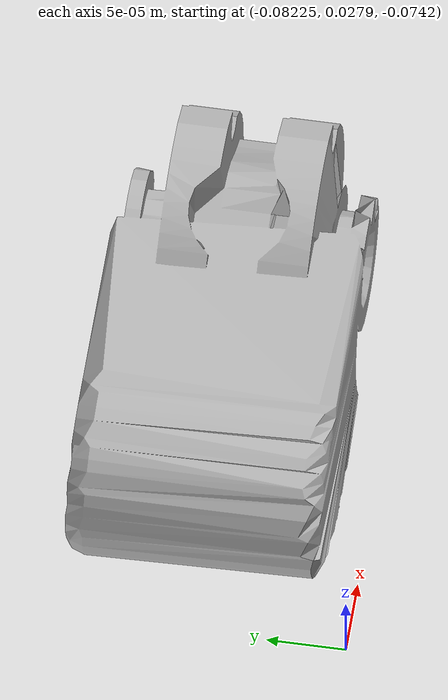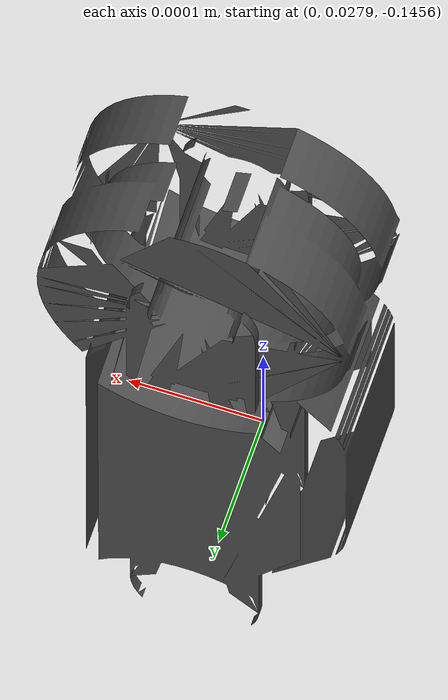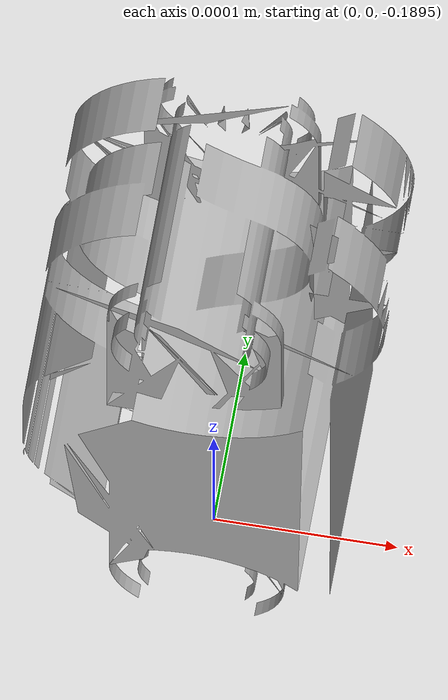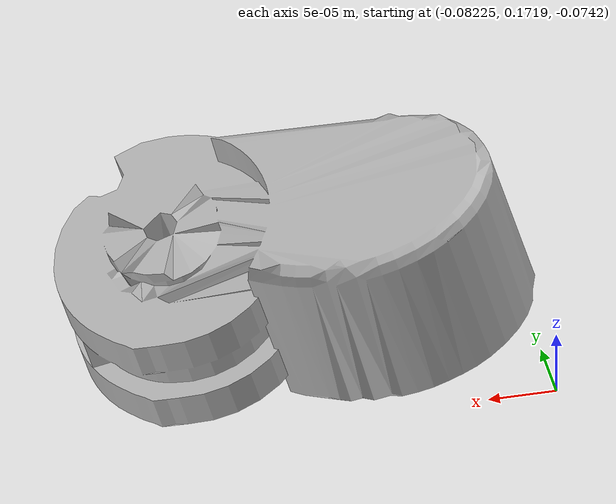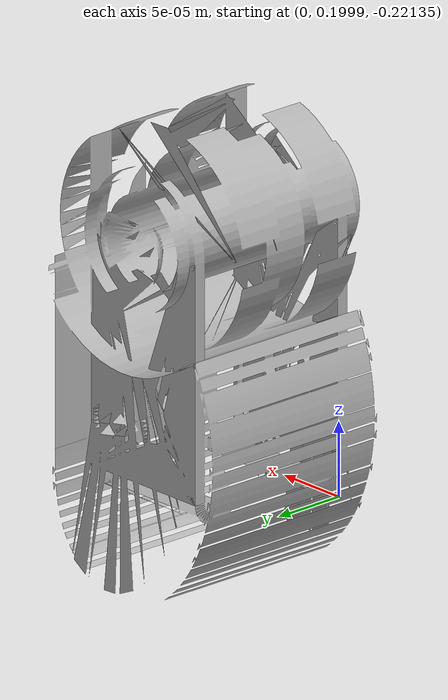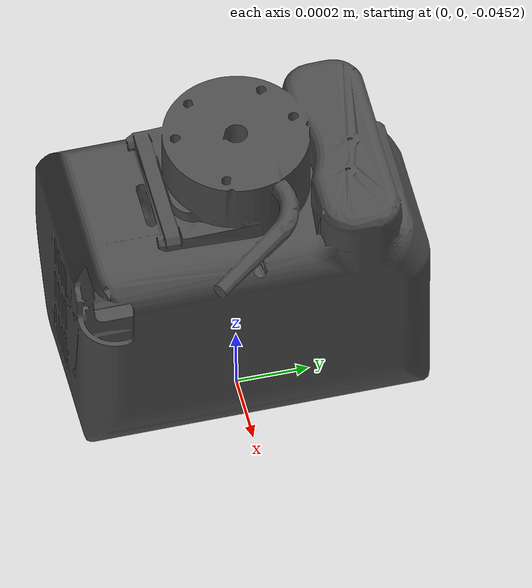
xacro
<?xml version="1.0"?>
<robot xmlns:sensor="http://playerstage.sourceforge.net/gazebo/xmlschema/#sensor"
       xmlns:controller="http://playerstage.sourceforge.net/gazebo/xmlschema/#controller"
       xmlns:interface="http://playerstage.sourceforge.net/gazebo/xmlschema/#interface"
       xmlns:xacro="http://playerstage.sourceforge.net/gazebo/xmlschema/#interface"
       name="m3" >

 <property name="M_PI" value="3.1415926535897931" />
 <property name="R_HAND" value="mh12" />
 <property name="L_HAND" value="mh14" />
 <property name="MESH" value="m3_description/meshes/mid_res" />
 <property name="MESH_COLL" value="m3_description/meshes/low_res" />

<!-- Meka Hand -->
<include filename="$(find m3_description)/urdf/H2R2_r_hand_defs.urdf.xacro" />
  <include filename="$(find m3_description)/urdf/H2R2_l_hand_defs.urdf.xacro" />

  <material name="GreyA"> <!-- darkest -->
	  <color rgba="0.3 0.3 0.3 1.0"/>
  </material>

  <material name="GreyB">
	  <color rgba="0.5 0.5 0.5 1.0"/>
  </material>

  <material name="GreyC">
	  <color rgba="0.7 0.7 0.7 1.0"/>
  </material>

  <link name="world" />

  <m3_r_hand side="r" reflect="0" parent="world">
    <origin xyz="0.0 0.2 0.0" rpy="0 0 0" />
  </m3_r_hand>
<m3_l_hand side="l" reflect="0" parent="world">
    <origin xyz="0.0 -0.2 0.0" rpy="0 0 0" />
  </m3_l_hand>

</robot>

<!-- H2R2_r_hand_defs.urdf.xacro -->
<robot xmlns:sensor="http://playerstage.sourceforge.net/gazebo/xmlschema/#sensor"
       xmlns:controller="http://playerstage.sourceforge.net/gazebo/xmlschema/#controller"
       xmlns:interface="http://playerstage.sourceforge.net/gazebo/xmlschema/#interface">

  <property name="M_PI" value="3.1415926535897931" />

  <macro name="m3_r_palm" params="side parent reflect *origin">

  <joint name="palm_joint" type="fixed">
    <origin xyz="0 0 -0.04414" rpy="0 0 0" />
    <parent link="${parent}"/>
    <child link="palm" />
  </joint>

     <link name="palm">
      <inertial>
        <mass value="0.663" />
	<origin xyz="0.001459 0.001619 -0.051312"/>
	<inertia ixx="0.000873"
	iyy="0.000597"
	izz="0.000565"
	ixy="0.000031"
	ixz="-0.000008"
	iyz="0.000016" />
      </inertial>

      <visual>
	      <material name="GreyA" />
	      <origin xyz="0 0 0" rpy="0 0 0 " />
	      <geometry name="palm_geom">
		      <mesh filename="package://${MESH}/H2R3/H2R3_RT8_palm_right.dae" />
	      </geometry>
      </visual>

      <collision>
	      <origin xyz="0 0 0" rpy="0.0 0.0 0.0 " />
	      <geometry name="palm_collision">
		      <mesh filename="package://${MESH_COLL}/H2R3/H2R3_RT8_palm_right.stl" />
	      </geometry>
      </collision>
    </link>

<!-- Start Thumb -->
    <joint name="m3joint_ua_${R_HAND}_j0" type="revolute">
      <axis xyz="0 0 -1" />
      <origin xyz="-0.02 0.028 -0.03" rpy="0 0 0" />
      <parent link="palm"/>
      <child link="thumb0"/>
      <limit effort="100" velocity="${20.0*M_PI/180}" lower="${-40*M_PI/180}" upper="${15*M_PI/180}" />
    </joint>

    <link name="thumb0">
      <inertial>
        <mass value="0.0117" />
	<origin xyz="0.0 0.0 0.0"/>
	<inertia ixx="0.0"
	iyy="0.0"
	izz="0.0"
	ixy="0.0"
	ixz="0.0"
	iyz="0.0" />
      </inertial>
      <visual>
	      <material name="GreyA" />
	      <origin xyz="0 0 0" rpy="0 0 0 " />
	      <geometry name="thumb0_geom">
		      <mesh filename="package://${MESH}/H2R3/H2R3_RJ0_thumb_abductlink.dae" />
	      </geometry>
      </visual>
      <collision>
	      <origin xyz="0 0 0" rpy="0.0 0.0 0.0 " />
	      <geometry name="thumb0_collision">
		      <mesh filename="package://${MESH_COLL}/H2R3/H2R3_RJ0_thumb_abductlink.stl" />
	      </geometry>
      </collision>
    </link>

    <joint name="m3joint_ua_${R_HAND}_j1" type="revolute">
      <axis xyz="0 -1 0"/>
     <limit effort="100" velocity="${75*M_PI/180}" lower="${-80.919*M_PI/180}" upper="${80.91*M_PI/180}" />
      <origin xyz="-0.018 0 0" rpy="0 0 0" />
      <parent link="thumb0"/>
      <child link="thumb1"/>
    </joint>
    <link name="thumb1">
      <inertial>
        <mass value="0.0344" />
	<origin xyz="0.0 0.0 0.0"/>
	<inertia ixx="0.0"
	iyy="0.0"
	izz="0.0"
	ixy="0.0"
	ixz="0.0"
	iyz="0.0" />
      </inertial>
      <visual>
	      <material name="GreyB" />
	      <origin xyz="0 0 0" rpy="0 0 0 " />
	      <geometry name="thumb1_geom">
		      <mesh filename="package://${MESH}/H2R3/H2R3_thumb_knuckle1.dae" />
	      </geometry>
      </visual>
      <collision>
	      <origin xyz="0 0 0" rpy="0.0 0.0 0.0 " />
	      <geometry name="thumb1_collision">
		      <mesh filename="package://${MESH_COLL}/H2R3/H2R3_thumb_knuckle1.stl" />
	      </geometry>
      </collision>
    </link>

    <joint name="m3joint_ua_${R_HAND}_j2" type="revolute">
      <axis xyz="0 -1 0" />
      <origin xyz="-0.044 0 0" rpy="0 0 0" />
      <parent link="thumb1" />
      <child link="thumb2"/>
      <limit effort="100" velocity="${50*M_PI/180}" lower="${-14.94*M_PI/180}" upper="${14.94*M_PI/180}" />
    </joint>

    <link name="thumb2">
      <inertial>
        <mass value="0.01" />
	<origin xyz="0.0 0.0 0.0"/>
	<inertia ixx="0.0"
	iyy="0.0"
	izz="0.0"
	ixy="0.0"
	ixz="0.0"
	iyz="0.0" />
      </inertial>
      <visual>
	      <material name="GreyC" />
	      <origin xyz="0 0 0" rpy="0 0 0 " />
	      <geometry name="thumb_knuckle2_geom">
		      <mesh filename="package://${MESH}/H2R3/H2R3_thumb_knuckle2.dae" />
	      </geometry>
      </visual>

      <collision>
	      <origin xyz="0 0 0" rpy="0.0 0.0 0.0 " />
	      <geometry name="thumb_knuckle2_collision">
		      <mesh filename="package://${MESH_COLL}/H2R3/H2R3_thumb_knuckle2.stl" />
	      </geometry>
      </collision>
    </link>

<!-- Start Index Finger -->
    <joint name="m3joint_ua_${R_HAND}_j3" type="revolute">
      <axis xyz="0 1 0" />
      <origin xyz="0 0.028 -0.101" rpy="0 0 0" />
      <parent link="palm" />
      <child link="index0"/>
	<limit effort="100" velocity="${50*M_PI/180}" lower="${-7.072*M_PI/180}" upper="${37.072*M_PI/180}" />
    </joint>

    <link name="index0">
      <inertial>
        <mass value="0.01" />
	<origin xyz="0.0 0.0 0.0"/>
	<inertia ixx="0.0"
	iyy="0.0"
	izz="0.0"
	ixy="0.0"
	ixz="0.0"
	iyz="0.0" />
      </inertial>
      <visual>
	      <material name="GreyA" />
	      <origin xyz="0 0 0" rpy="0 0 0 " />
	      <geometry name="index0_geom">
		     <mesh filename="package://${MESH}/H2R3/H2R3_finger_knuckle1.dae" />
	      </geometry>
      </visual>
      <collision>
	      <origin xyz="0 0 0" rpy="0.0 0.0 0.0 " />
	      <geometry name="index0__collision">
		      <mesh filename="package://${MESH_COLL}/H2R3/H2R3_finger_knuckle1.stl" />
	      </geometry>
      </collision>
    </link>

    <joint name="m3joint_ua_${R_HAND}_j4" type="revolute">
      <axis xyz="0 1 0" />
      <limit effort="100" velocity="${1600*M_PI/180}" lower="${-34.99*M_PI/180}" upper="${34.99*M_PI/180}" />
      <origin xyz="0 0 -0.044" rpy="0 0 0" />
      <parent link="index0"/>
      <child link="index1"/>
    </joint>

    <link name="index1">
      <inertial>
        <mass value="0.0429" />
	<origin xyz="0.0 0.0 0.0"/>
	<inertia ixx="0.0"
	iyy="0.0"
	izz="0.0"
	ixy="0.0"
	ixz="0.0"
	iyz="0.0" />
      </inertial>
      <visual>
	      <material name="GreyC" />
	      <origin xyz="0 0 0" rpy="0 0 0 " />
	      <geometry name="index1_geom">
		      <mesh filename="package://${MESH}/H2R3/H2R3_finger_knuckle2.dae" />
	      </geometry>
      </visual>
      <collision>
	      <origin xyz="0 0 0" rpy="0.0 0.0 0.0 " />
	      <geometry name="index1_collision">
		      <mesh filename="package://${MESH_COLL}/H2R3/H2R3_finger_knuckle2.stl" />
	      </geometry>
      </collision>
    </link>

    <joint name="m3joint_ua_${R_HAND}_j5" type="revolute">
      <axis xyz="0 1 0" />
      <limit effort="100" velocity="${1600*M_PI/180}" lower="${-34.21*M_PI/180}" upper="${34.213*M_PI/180}" />
      <origin xyz="0 0 -0.032" rpy="0 0 0" />
      <parent link="index1"/>
      <child link="index2"/>
    </joint>

    <link name="index2">
      <inertial>
        <mass value="0.01" />
	<origin xyz="0.0 0.0 0.0"/>
	<inertia ixx="0.0"
	iyy="0.0"
	izz="0.0"
	ixy="0.0"
	ixz="0.0"
	iyz="0.0" />
      </inertial>
      <visual>
	      <material name="GreyC" />
	      <origin xyz="0 0 0" rpy="0 0 0 " />
	      <geometry name="index2_geom">
		      <mesh filename="package://${MESH}/H2R3/H2R3_finger_knuckle3.dae" />
	      </geometry>
      </visual>
      <collision>
	      <origin xyz="0 0 0" rpy="0.0 0.0 0.0 " />
	      <geometry name="index2_collision">
		      <mesh filename="package://${MESH_COLL}/H2R3/H2R3_finger_knuckle3.stl" />
	      </geometry>
      </collision>
    </link>

<!-- Start Ring Finger -->
    <joint name="m3joint_ua_${R_HAND}_j6" type="revolute">
      <axis xyz="0 1 0" />
      <origin xyz="0 0 -0.101" rpy="0 0 0" />
      <parent link="palm" />
      <child link="ring0"/>
	<limit effort="100" velocity="${50*M_PI/180}" lower="${-7.072*M_PI/180}" upper="${37.072*M_PI/180}" />
    </joint>

    <link name="ring0">
      <inertial>
        <mass value="0.01" />
	<origin xyz="0.0 0.0 0.0"/>
	<inertia ixx="0.0"
	iyy="0.0"
	izz="0.0"
	ixy="0.0"
	ixz="0.0"
	iyz="0.0" />
      </inertial>
      <visual>
	      <material name="GreyA" />
	      <origin xyz="0 0 0" rpy="0 0 0 " />
	      <geometry name="ring0_geom">
		     <mesh filename="package://${MESH}/H2R3/H2R3_finger_knuckle1.dae" />
	      </geometry>
      </visual>
      <collision>
	      <origin xyz="0 0 0" rpy="0.0 0.0 0.0 " />
	      <geometry name="ring0__collision">
		      <mesh filename="package://${MESH_COLL}/H2R3/H2R3_finger_knuckle1.stl" />
	      </geometry>
      </collision>
    </link>

    <joint name="m3joint_ua_${R_HAND}_j7" type="revolute">
      <axis xyz="0 1 0" />
      <limit effort="100" velocity="${1600*M_PI/180}" lower="${-34.99*M_PI/180}" upper="${34.99*M_PI/180}" />
      <origin xyz="0 0 -0.044" rpy="0 0 0" />
      <parent link="ring0"/>
      <child link="ring1"/>
    </joint>

    <link name="ring1">
      <inertial>
        <mass value="0.0429" />
	<origin xyz="0.0 0.0 0.0"/>
	<inertia ixx="0.0"
	iyy="0.0"
	izz="0.0"
	ixy="0.0"
	ixz="0.0"
	iyz="0.0" />
      </inertial>
      <visual>
	      <material name="GreyC" />
	      <origin xyz="0 0 0" rpy="0 0 0 " />
	      <geometry name="ring1_geom">
		      <mesh filename="package://${MESH}/H2R3/H2R3_finger_knuckle2.dae" />
	      </geometry>
      </visual>
      <collision>
	      <origin xyz="0 0 0" rpy="0.0 0.0 0.0 " />
	      <geometry name="ring1_collision">
		      <mesh filename="package://${MESH_COLL}/H2R3/H2R3_finger_knuckle2.stl" />
	      </geometry>
      </collision>
    </link>

    <joint name="m3joint_ua_${R_HAND}_j8" type="revolute">
      <axis xyz="0 1 0" />
      <limit effort="100" velocity="${1600*M_PI/180}" lower="${-34.21*M_PI/180}" upper="${34.213*M_PI/180}" />
      <origin xyz="0 0 -0.032" rpy="0 0 0" />
      <parent link="ring1"/>
      <child link="ring2"/>
    </joint>

    <link name="ring2">
      <inertial>
        <mass value="0.01" />
	<origin xyz="0.0 0.0 0.0"/>
	<inertia ixx="0.0"
	iyy="0.0"
	izz="0.0"
	ixy="0.0"
	ixz="0.0"
	iyz="0.0" />
      </inertial>
      <visual>
	      <material name="GreyC" />
	      <origin xyz="0 0 0" rpy="0 0 0 " />
	      <geometry name="ring2_geom">
		      <mesh filename="package://${MESH}/H2R3/H2R3_finger_knuckle3.dae" />
	      </geometry>
      </visual>
      <collision>
	      <origin xyz="0 0 0" rpy="0.0 0.0 0.0 " />
	      <geometry name="ring2_collision">
		      <mesh filename="package://${MESH_COLL}/H2R3/H2R3_finger_knuckle3.stl" />
	      </geometry>
      </collision>
    </link>

<!-- Start Pinky Finger -->
    <joint name="m3joint_ua_${R_HAND}_j9" type="revolute">
      <axis xyz="0 1 0" />
      <origin xyz="0 -0.028 -0.101" rpy="0 0 0" />
      <parent link="palm" />
      <child link="pinky0"/>
	<limit effort="100" velocity="${50*M_PI/180}" lower="${-7.072*M_PI/180}" upper="${37.072*M_PI/180}" />
    </joint>

    <link name="pinky0">
      <inertial>
        <mass value="0.01" />
	<origin xyz="0.0 0.0 0.0"/>
	<inertia ixx="0.0"
	iyy="0.0"
	izz="0.0"
	ixy="0.0"
	ixz="0.0"
	iyz="0.0" />
      </inertial>
      <visual>
	      <material name="GreyA" />
	      <origin xyz="0 0 0" rpy="0 0 0 " />
	      <geometry name="pinky0_geom">
		     <mesh filename="package://${MESH}/H2R3/H2R3_finger_knuckle1.dae" />
	      </geometry>
      </visual>
      <collision>
	      <origin xyz="0 0 0" rpy="0.0 0.0 0.0 " />
	      <geometry name="pinky0__collision">
		      <mesh filename="package://${MESH_COLL}/H2R3/H2R3_finger_knuckle1.stl" />
	      </geometry>
      </collision>
    </link>

    <joint name="m3joint_ua_${R_HAND}_j10" type="revolute">
      <axis xyz="0 1 0" />
      <limit effort="100" velocity="${1600*M_PI/180}" lower="${-34.99*M_PI/180}" upper="${34.99*M_PI/180}" />
      <origin xyz="0 0 -0.044" rpy="0 0 0" />
      <parent link="pinky0"/>
      <child link="pinky1"/>
    </joint>

    <link name="pinky1">
      <inertial>
        <mass value="0.0429" />
	<origin xyz="0.0 0.0 0.0"/>
	<inertia ixx="0.0"
	iyy="0.0"
	izz="0.0"
	ixy="0.0"
	ixz="0.0"
	iyz="0.0" />
      </inertial>
      <visual>
	      <material name="GreyC" />
	      <origin xyz="0 0 0" rpy="0 0 0 " />
	      <geometry name="pinky1_geom">
		      <mesh filename="package://${MESH}/H2R3/H2R3_finger_knuckle2.dae" />
	      </geometry>
      </visual>
      <collision>
	      <origin xyz="0 0 0" rpy="0.0 0.0 0.0 " />
	      <geometry name="pinky1_collision">
		      <mesh filename="package://${MESH_COLL}/H2R3/H2R3_finger_knuckle2.stl" />
	      </geometry>
      </collision>
    </link>

    <joint name="m3joint_ua_${R_HAND}_j11" type="revolute">
      <axis xyz="0 1 0" />
      <limit effort="100" velocity="${1600*M_PI/180}" lower="${-34.21*M_PI/180}" upper="${34.213*M_PI/180}" />
      <origin xyz="0 0 -0.032" rpy="0 0 0" />
      <parent link="pinky1"/>
      <child link="pinky2"/>
    </joint>

    <link name="pinky2">
      <inertial>
        <mass value="0.01" />
	<origin xyz="0.0 0.0 0.0"/>
	<inertia ixx="0.0"
	iyy="0.0"
	izz="0.0"
	ixy="0.0"
	ixz="0.0"
	iyz="0.0" />
      </inertial>
      <visual>
	      <material name="GreyC" />
	      <origin xyz="0 0 0" rpy="0 0 0 " />
	      <geometry name="pinky2_geom">
		      <mesh filename="package://${MESH}/H2R3/H2R3_finger_knuckle3.dae" />
	      </geometry>
      </visual>
      <collision>
	      <origin xyz="0 0 0" rpy="0.0 0.0 0.0 " />
	      <geometry name="pinky2_collision">
		      <mesh filename="package://${MESH_COLL}/H2R3/H2R3_finger_knuckle3.stl" />
	      </geometry>
      </collision>
    </link>
</macro>

  <macro name="m3_r_hand" params="side parent reflect *origin">
    <m3_r_palm side="${side}" reflect="${reflect}" parent="${parent}">
      <insert_block name="origin" />
    </m3_r_palm>
  </macro>

</robot>

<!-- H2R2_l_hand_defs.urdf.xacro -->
<robot xmlns:sensor="http://playerstage.sourceforge.net/gazebo/xmlschema/#sensor"
       xmlns:controller="http://playerstage.sourceforge.net/gazebo/xmlschema/#controller"
       xmlns:interface="http://playerstage.sourceforge.net/gazebo/xmlschema/#interface">

  <property name="M_PI" value="3.1415926535897931" />

  <macro name="m3_l_palm" params="side parent reflect *origin">

  <joint name="l_palm_joint" type="fixed">
      <origin xyz="0 0.2 -0.04414" rpy="0 0 0" />
    <parent link="${parent}"/>
    <child link="l_palm" />
  </joint>

     <link name="l_palm">
      <inertial>
        <mass value="0.663" />
	<origin xyz="0.001459 0.001619 -0.051312"/>
	<inertia ixx="0.000873"
	iyy="0.000597"
	izz="0.000565"
	ixy="0.000031"
	ixz="-0.000008"
	iyz="0.000016" />
      </inertial>

      <visual>
	      <material name="GreyA" />
	      <origin xyz="0 0 0" rpy="0 0 0 " />
	      <geometry name="palm_geom">
		      <mesh filename="package://${MESH}/H2R3/H2R3_LT8_palm_left.dae" />
	      </geometry>
      </visual>

      <collision>
	      <origin xyz="0 0 0" rpy="0.0 0.0 0.0 " />
	      <geometry name="palm_collision">
		      <mesh filename="package://${MESH_COLL}/H2R3/H2R3_LT8_palm_left.dae" />
	      </geometry>
      </collision>
    </link>

<!-- Start Thumb -->
    <joint name="m3joint_ua_${L_HAND}_j0" type="revolute">
      <axis xyz="0 0 1" />
      <origin xyz="-0.02 -0.028 -0.03" rpy="0 0 0" />
      <parent link="l_palm"/>
      <child link="l_thumb0"/>
      <limit effort="100" velocity="${20.0*M_PI/180}" lower="${-40*M_PI/180}" upper="${15*M_PI/180}" />
    </joint>

    <link name="l_thumb0">
      <inertial>
        <mass value="0.0117" />
	<origin xyz="0.0 0.0 0.0"/>
	<inertia ixx="0.0"
	iyy="0.0"
	izz="0.0"
	ixy="0.0"
	ixz="0.0"
	iyz="0.0" />
      </inertial>
      <visual>
	      <material name="GreyA" />
	      <origin xyz="0 0 0" rpy="0 0 0 " />
	      <geometry name="thumb0_geom">
		      <mesh filename="package://${MESH}/H2R3/H2R3_RJ0_thumb_abductlink.dae" />
	      </geometry>
      </visual>
      <collision>
	      <origin xyz="0 0 0" rpy="0.0 0.0 0.0 " />
	      <geometry name="thumb0_collision">
		      <mesh filename="package://${MESH_COLL}/H2R3/H2R3_RJ0_thumb_abductlink.stl" />
	      </geometry>
      </collision>
    </link>

    <joint name="m3joint_ua_${L_HAND}_j1" type="revolute">
      <axis xyz="0 -1 0"/>
     <limit effort="100" velocity="${75*M_PI/180}" lower="${-80.919*M_PI/180}" upper="${80.91*M_PI/180}" />
      <origin xyz="-0.018 0 0" rpy="0 0 0" />
      <parent link="l_thumb0"/>
      <child link="l_thumb1"/>
    </joint>
    <link name="l_thumb1">
      <inertial>
        <mass value="0.0344" />
	<origin xyz="0.0 0.0 0.0"/>
	<inertia ixx="0.0"
	iyy="0.0"
	izz="0.0"
	ixy="0.0"
	ixz="0.0"
	iyz="0.0" />
      </inertial>
      <visual>
	      <material name="GreyB" />
	      <origin xyz="0 0 0" rpy="0 0 0 " />
	      <geometry name="thumb1_geom">
		      <mesh filename="package://${MESH}/H2R3/H2R3_thumb_knuckle1.dae" />
	      </geometry>
      </visual>
      <collision>
	      <origin xyz="0 0 0" rpy="0.0 0.0 0.0 " />
	      <geometry name="thumb1_collision">
		      <mesh filename="package://${MESH_COLL}/H2R3/H2R3_thumb_knuckle1.stl" />
	      </geometry>
      </collision>
    </link>

    <joint name="m3joint_ua_${L_HAND}_j2" type="revolute">
      <axis xyz="0 -1 0" />
      <origin xyz="-0.044 0 0" rpy="0 0 0" />
      <parent link="l_thumb1" />
      <child link="l_thumb2"/>
      <limit effort="100" velocity="${50*M_PI/180}" lower="${-14.94*M_PI/180}" upper="${14.94*M_PI/180}" />
    </joint>

    <link name="l_thumb2">
      <inertial>
        <mass value="0.01" />
	<origin xyz="0.0 0.0 0.0"/>
	<inertia ixx="0.0"
	iyy="0.0"
	izz="0.0"
	ixy="0.0"
	ixz="0.0"
	iyz="0.0" />
      </inertial>
      <visual>
	      <material name="GreyC" />
	      <origin xyz="0 0 0" rpy="0 0 0 " />
	      <geometry name="thumb_knuckle2_geom">
		      <mesh filename="package://${MESH}/H2R3/H2R3_thumb_knuckle2.dae" />
	      </geometry>
      </visual>

      <collision>
	      <origin xyz="0 0 0" rpy="0.0 0.0 0.0 " />
	      <geometry name="thumb_knuckle2_collision">
		      <mesh filename="package://${MESH_COLL}/H2R3/H2R3_thumb_knuckle2.stl" />
	      </geometry>
      </collision>
    </link>

<!-- Start Index Finger -->
    <joint name="m3joint_ua_${L_HAND}_j3" type="revolute">
      <axis xyz="0 1 0" />
      <origin xyz="0 -0.028 -0.101" rpy="0 0 0" />
      <parent link="l_palm" />
      <child link="l_index0"/>
	<limit effort="100" velocity="${50*M_PI/180}" lower="${-7.072*M_PI/180}" upper="${37.072*M_PI/180}" />
    </joint>

    <link name="l_index0">
      <inertial>
        <mass value="0.01" />
	<origin xyz="0.0 0.0 0.0"/>
	<inertia ixx="0.0"
	iyy="0.0"
	izz="0.0"
	ixy="0.0"
	ixz="0.0"
	iyz="0.0" />
      </inertial>
      <visual>
	      <material name="GreyA" />
	      <origin xyz="0 0 0" rpy="0 0 0 " />
	      <geometry name="index0_geom">
		     <mesh filename="package://${MESH}/H2R3/H2R3_finger_knuckle1.dae" />
	      </geometry>
      </visual>
      <collision>
	      <origin xyz="0 0 0" rpy="0.0 0.0 0.0 " />
	      <geometry name="index0__collision">
		      <mesh filename="package://${MESH_COLL}/H2R3/H2R3_finger_knuckle1.stl" />
	      </geometry>
      </collision>
    </link>

    <joint name="m3joint_ua_${L_HAND}_j4" type="revolute">
      <axis xyz="0 1 0" />
      <limit effort="100" velocity="${1600*M_PI/180}" lower="${-34.99*M_PI/180}" upper="${34.99*M_PI/180}" />
      <origin xyz="0 0 -0.044" rpy="0 0 0" />
      <parent link="l_index0"/>
      <child link="l_index1"/>
    </joint>

    <link name="l_index1">
      <inertial>
        <mass value="0.0429" />
	<origin xyz="0.0 0.0 0.0"/>
	<inertia ixx="0.0"
	iyy="0.0"
	izz="0.0"
	ixy="0.0"
	ixz="0.0"
	iyz="0.0" />
      </inertial>
      <visual>
	      <material name="GreyC" />
	      <origin xyz="0 0 0" rpy="0 0 0 " />
	      <geometry name="index1_geom">
		      <mesh filename="package://${MESH}/H2R3/H2R3_finger_knuckle2.dae" />
	      </geometry>
      </visual>
      <collision>
	      <origin xyz="0 0 0" rpy="0.0 0.0 0.0 " />
	      <geometry name="index1_collision">
		      <mesh filename="package://${MESH_COLL}/H2R3/H2R3_finger_knuckle2.stl" />
	      </geometry>
      </collision>
    </link>

    <joint name="m3joint_ua_${L_HAND}_j5" type="revolute">
      <axis xyz="0 1 0" />
      <limit effort="100" velocity="${1600*M_PI/180}" lower="${-34.21*M_PI/180}" upper="${34.213*M_PI/180}" />
      <origin xyz="0 0 -0.032" rpy="0 0 0" />
      <parent link="l_index1"/>
      <child link="l_index2"/>
    </joint>

    <link name="l_index2">
      <inertial>
        <mass value="0.01" />
	<origin xyz="0.0 0.0 0.0"/>
	<inertia ixx="0.0"
	iyy="0.0"
	izz="0.0"
	ixy="0.0"
	ixz="0.0"
	iyz="0.0" />
      </inertial>
      <visual>
	      <material name="GreyC" />
	      <origin xyz="0 0 0" rpy="0 0 0 " />
	      <geometry name="index2_geom">
		      <mesh filename="package://${MESH}/H2R3/H2R3_finger_knuckle3.dae" />
	      </geometry>
      </visual>
      <collision>
	      <origin xyz="0 0 0" rpy="0.0 0.0 0.0 " />
	      <geometry name="index2_collision">
		      <mesh filename="package://${MESH_COLL}/H2R3/H2R3_finger_knuckle3.stl" />
	      </geometry>
      </collision>
    </link>

<!-- Start Ring Finger -->
    <joint name="m3joint_ua_${L_HAND}_j6" type="revolute">
      <axis xyz="0 1 0" />
      <origin xyz="0 0 -0.101" rpy="0 0 0" />
      <parent link="l_palm" />
      <child link="l_ring0"/>
	<limit effort="100" velocity="${50*M_PI/180}" lower="${-7.072*M_PI/180}" upper="${37.072*M_PI/180}" />
    </joint>

    <link name="l_ring0">
      <inertial>
        <mass value="0.01" />
	<origin xyz="0.0 0.0 0.0"/>
	<inertia ixx="0.0"
	iyy="0.0"
	izz="0.0"
	ixy="0.0"
	ixz="0.0"
	iyz="0.0" />
      </inertial>
      <visual>
	      <material name="GreyA" />
	      <origin xyz="0 0 0" rpy="0 0 0 " />
	      <geometry name="ring0_geom">
		     <mesh filename="package://${MESH}/H2R3/H2R3_finger_knuckle1.dae" />
	      </geometry>
      </visual>
      <collision>
	      <origin xyz="0 0 0" rpy="0.0 0.0 0.0 " />
	      <geometry name="ring0__collision">
		      <mesh filename="package://${MESH_COLL}/H2R3/H2R3_finger_knuckle1.stl" />
	      </geometry>
      </collision>
    </link>

    <joint name="m3joint_ua_${L_HAND}_j7" type="revolute">
      <axis xyz="0 1 0" />
      <limit effort="100" velocity="${1600*M_PI/180}" lower="${-34.99*M_PI/180}" upper="${34.99*M_PI/180}" />
      <origin xyz="0 0 -0.044" rpy="0 0 0" />
      <parent link="l_ring0"/>
      <child link="l_ring1"/>
    </joint>

    <link name="l_ring1">
      <inertial>
        <mass value="0.0429" />
	<origin xyz="0.0 0.0 0.0"/>
	<inertia ixx="0.0"
	iyy="0.0"
	izz="0.0"
	ixy="0.0"
	ixz="0.0"
	iyz="0.0" />
      </inertial>
      <visual>
	      <material name="GreyC" />
	      <origin xyz="0 0 0" rpy="0 0 0 " />
	      <geometry name="ring1_geom">
		      <mesh filename="package://${MESH}/H2R3/H2R3_finger_knuckle2.dae" />
	      </geometry>
      </visual>
      <collision>
	      <origin xyz="0 0 0" rpy="0.0 0.0 0.0 " />
	      <geometry name="ring1_collision">
		      <mesh filename="package://${MESH_COLL}/H2R3/H2R3_finger_knuckle2.stl" />
	      </geometry>
      </collision>
    </link>

    <joint name="m3joint_ua_${L_HAND}_j8" type="revolute">
      <axis xyz="0 1 0" />
      <limit effort="100" velocity="${1600*M_PI/180}" lower="${-34.21*M_PI/180}" upper="${34.213*M_PI/180}" />
      <origin xyz="0 0 -0.032" rpy="0 0 0" />
      <parent link="l_ring1"/>
      <child link="l_ring2"/>
    </joint>

    <link name="l_ring2">
      <inertial>
        <mass value="0.01" />
	<origin xyz="0.0 0.0 0.0"/>
	<inertia ixx="0.0"
	iyy="0.0"
	izz="0.0"
	ixy="0.0"
	ixz="0.0"
	iyz="0.0" />
      </inertial>
      <visual>
	      <material name="GreyC" />
	      <origin xyz="0 0 0" rpy="0 0 0 " />
	      <geometry name="ring2_geom">
		      <mesh filename="package://${MESH}/H2R3/H2R3_finger_knuckle3.dae" />
	      </geometry>
      </visual>
      <collision>
	      <origin xyz="0 0 0" rpy="0.0 0.0 0.0 " />
	      <geometry name="ring2_collision">
		      <mesh filename="package://${MESH_COLL}/H2R3/H2R3_finger_knuckle3.stl" />
	      </geometry>
      </collision>
    </link>

<!-- Start Pinky Finger -->
    <joint name="m3joint_ua_${L_HAND}_j9" type="revolute">
      <axis xyz="0 1 0" />
      <origin xyz="0 0.028 -0.101" rpy="0 0 0" />
      <parent link="l_palm" />
      <child link="l_pinky0"/>
	<limit effort="100" velocity="${50*M_PI/180}" lower="${-7.072*M_PI/180}" upper="${37.072*M_PI/180}" />
    </joint>

    <link name="l_pinky0">
      <inertial>
        <mass value="0.01" />
	<origin xyz="0.0 0.0 0.0"/>
	<inertia ixx="0.0"
	iyy="0.0"
	izz="0.0"
	ixy="0.0"
	ixz="0.0"
	iyz="0.0" />
      </inertial>
      <visual>
	      <material name="GreyA" />
	      <origin xyz="0 0 0" rpy="0 0 0 " />
	      <geometry name="pinky0_geom">
		     <mesh filename="package://${MESH}/H2R3/H2R3_finger_knuckle1.dae" />
	      </geometry>
      </visual>
      <collision>
	      <origin xyz="0 0 0" rpy="0.0 0.0 0.0 " />
	      <geometry name="pinky0__collision">
		      <mesh filename="package://${MESH_COLL}/H2R3/H2R3_finger_knuckle1.stl" />
	      </geometry>
      </collision>
    </link>

    <joint name="m3joint_ua_${L_HAND}_j10" type="revolute">
      <axis xyz="0 1 0" />
      <limit effort="100" velocity="${1600*M_PI/180}" lower="${-34.99*M_PI/180}" upper="${34.99*M_PI/180}" />
      <origin xyz="0 0 -0.044" rpy="0 0 0" />
      <parent link="l_pinky0"/>
      <child link="l_pinky1"/>
    </joint>

    <link name="l_pinky1">
      <inertial>
        <mass value="0.0429" />
	<origin xyz="0.0 0.0 0.0"/>
	<inertia ixx="0.0"
	iyy="0.0"
	izz="0.0"
	ixy="0.0"
	ixz="0.0"
	iyz="0.0" />
      </inertial>
      <visual>
	      <material name="GreyC" />
	      <origin xyz="0 0 0" rpy="0 0 0 " />
	      <geometry name="pinky1_geom">
		      <mesh filename="package://${MESH}/H2R3/H2R3_finger_knuckle2.dae" />
	      </geometry>
      </visual>
      <collision>
	      <origin xyz="0 0 0" rpy="0.0 0.0 0.0 " />
	      <geometry name="pinky1_collision">
		      <mesh filename="package://${MESH_COLL}/H2R3/H2R3_finger_knuckle2.stl" />
	      </geometry>
      </collision>
    </link>

    <joint name="m3joint_ua_${L_HAND}_j11" type="revolute">
      <axis xyz="0 1 0" />
      <limit effort="100" velocity="${1600*M_PI/180}" lower="${-34.21*M_PI/180}" upper="${34.213*M_PI/180}" />
      <origin xyz="0 0 -0.032" rpy="0 0 0" />
      <parent link="l_pinky1"/>
      <child link="l_pinky2"/>
    </joint>

    <link name="l_pinky2">
      <inertial>
        <mass value="0.01" />
	<origin xyz="0.0 0.0 0.0"/>
	<inertia ixx="0.0"
	iyy="0.0"
	izz="0.0"
	ixy="0.0"
	ixz="0.0"
	iyz="0.0" />
      </inertial>
      <visual>
	      <material name="GreyC" />
	      <origin xyz="0 0 0" rpy="0 0 0 " />
	      <geometry name="pinky2_geom">
		      <mesh filename="package://${MESH}/H2R3/H2R3_finger_knuckle3.dae" />
	      </geometry>
      </visual>
      <collision>
	      <origin xyz="0 0 0" rpy="0.0 0.0 0.0 " />
	      <geometry name="pinky2_collision">
		      <mesh filename="package://${MESH_COLL}/H2R3/H2R3_finger_knuckle3.stl" />
	      </geometry>
      </collision>
    </link>
</macro>

  <macro name="m3_l_hand" params="side parent reflect *origin">
    <m3_l_palm side="${side}" reflect="${reflect}" parent="${parent}">
      <insert_block name="origin" />
    </m3_l_palm>
  </macro>

</robot>
